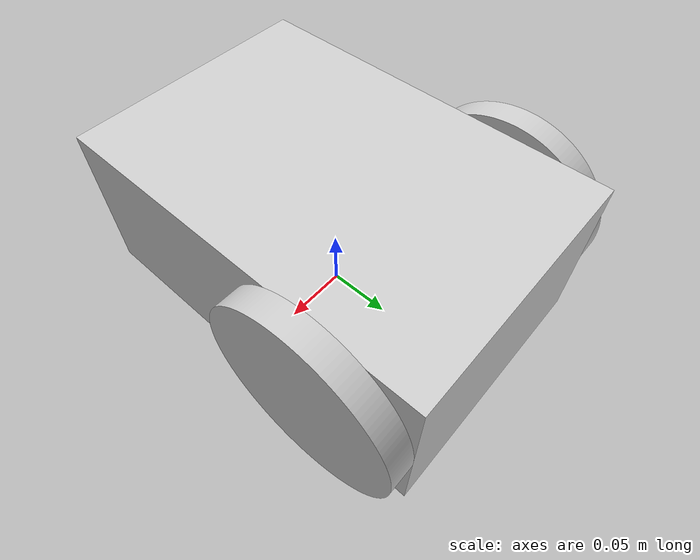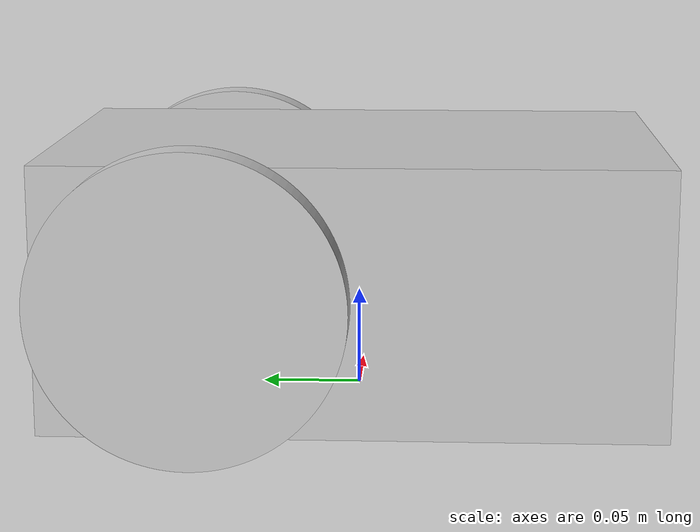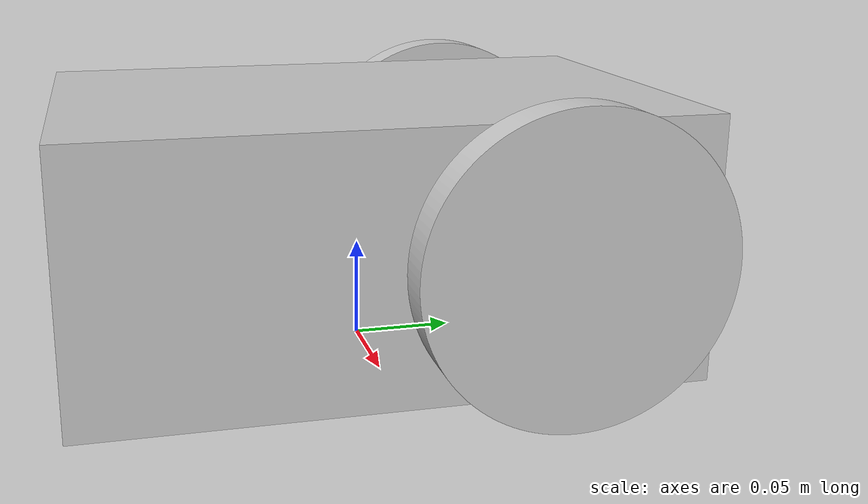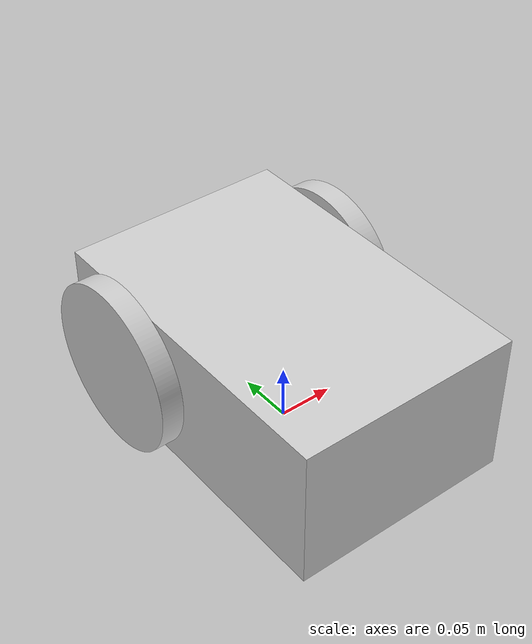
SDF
<sdf version='1.10'>
  <model name='diff_bot'>
    <link name='base_link'>
      <inertial>
        <pose>0 0 0 0 0 0</pose>
        <mass>0.010288200184753521</mass>
        <inertia>
          <ixx>9.2e-05</ixx>
          <ixy>0</ixy>
          <ixz>0</ixz>
          <iyy>4.8999999999999998e-05</iyy>
          <iyz>0</iyz>
          <izz>0.000111</izz>
        </inertia>
      </inertial>
      <visual name='base_link_visual'>
        <pose>0 0 0 0 0 0</pose>
        <geometry>
          <mesh>
            <scale>1 1 1</scale>
            <uri>model://model_pkg/models/base.dae</uri>
          </mesh>
        </geometry>
      </visual>
    </link>
    <joint name='left_wheel_joint' type='revolute'>
      <pose relative_to='base_link'>0.10000000000000001 0.074999999999999997 0.065000000000000002 0 0 0</pose>
      <parent>base_link</parent>
      <child>left_wheel_link</child>
      <axis>
        <xyz>1 0 0</xyz>
        <limit>
          <lower>-inf</lower>
          <upper>inf</upper>
        </limit>
        <dynamics>
          <spring_reference>0</spring_reference>
          <spring_stiffness>0</spring_stiffness>
        </dynamics>
      </axis>
    </joint>
    <link name='left_wheel_link'>
      <pose relative_to='left_wheel_joint'>0 0 0 0 0 0</pose>
      <inertial>
        <pose>0 0 0 0 0 0</pose>
        <mass>0.00046597988319067868</mass>
        <inertia>
          <ixx>9.9999999999999995e-07</ixx>
          <ixy>0</ixy>
          <ixz>0</ixz>
          <iyy>9.9999999999999995e-07</iyy>
          <iyz>0</iyz>
          <izz>9.9999999999999995e-07</izz>
        </inertia>
      </inertial>
      <visual name='left_wheel_link_visual'>
        <pose>0 0 0 0 0 0</pose>
        <geometry>
          <mesh>
            <scale>1 1 1</scale>
            <uri>model://model_pkg/models/left_wheel.dae</uri>
          </mesh>
        </geometry>
      </visual>
    </link>
    <joint name='right_wheel_joint' type='revolute'>
      <pose relative_to='base_link'>-0.10000000000000001 0.074999999999999997 0.065000000000000002 0 0 0</pose>
      <parent>base_link</parent>
      <child>right_wheel_link</child>
      <axis>
        <xyz>1 0 0</xyz>
        <limit>
          <lower>-inf</lower>
          <upper>inf</upper>
        </limit>
        <dynamics>
          <spring_reference>0</spring_reference>
          <spring_stiffness>0</spring_stiffness>
        </dynamics>
      </axis>
    </joint>
    <link name='right_wheel_link'>
      <pose relative_to='right_wheel_joint'>0 0 0 0 0 0</pose>
      <inertial>
        <pose>0 0 0 0 0 0</pose>
        <mass>0.000465979901520834</mass>
        <inertia>
          <ixx>9.9999999999999995e-07</ixx>
          <ixy>0</ixy>
          <ixz>0</ixz>
          <iyy>9.9999999999999995e-07</iyy>
          <iyz>0</iyz>
          <izz>9.9999999999999995e-07</izz>
        </inertia>
      </inertial>
      <visual name='right_wheel_link_visual'>
        <pose>0 0 0 0 0 0</pose>
        <geometry>
          <mesh>
            <scale>1 1 1</scale>
            <uri>model://model_pkg/models/right_wheel.dae</uri>
          </mesh>
        </geometry>
      </visual>
    </link>
  </model>
</sdf>
